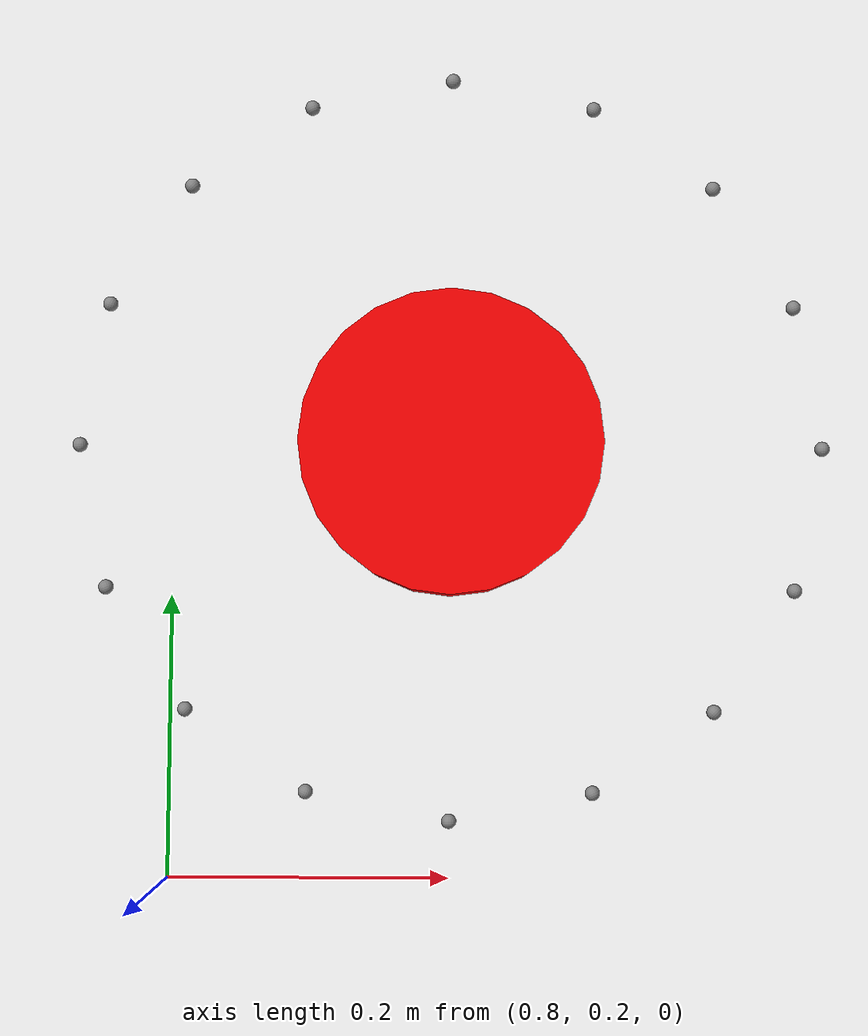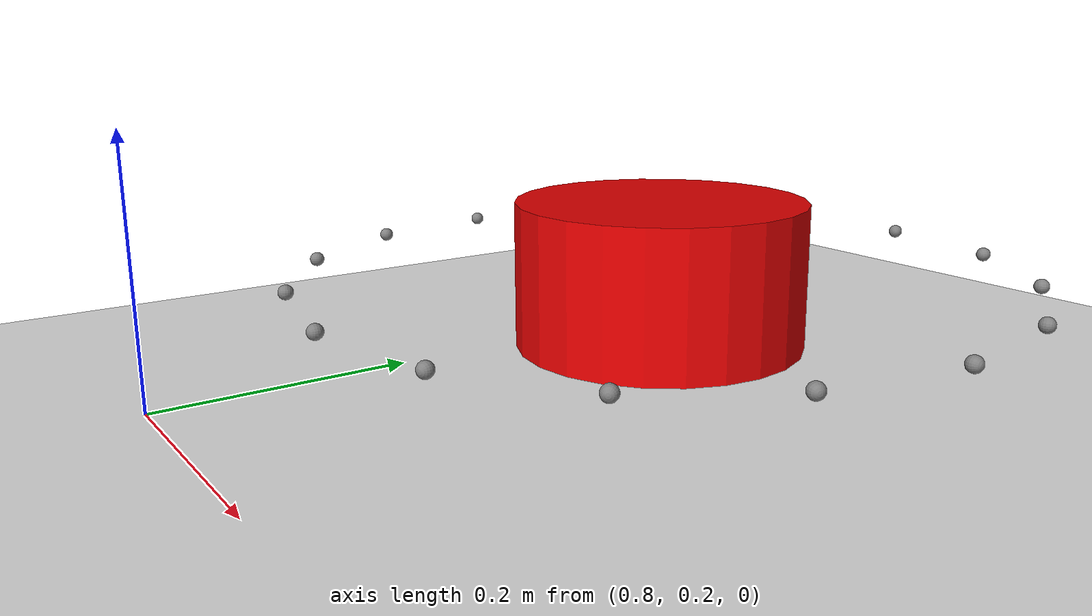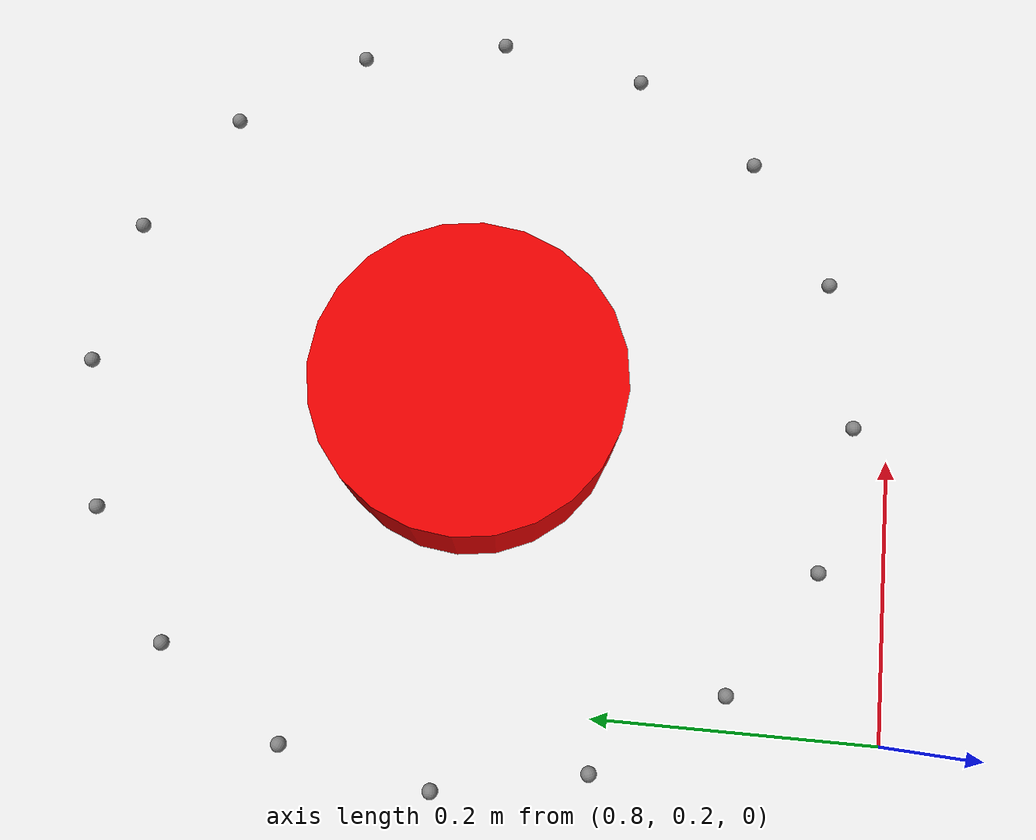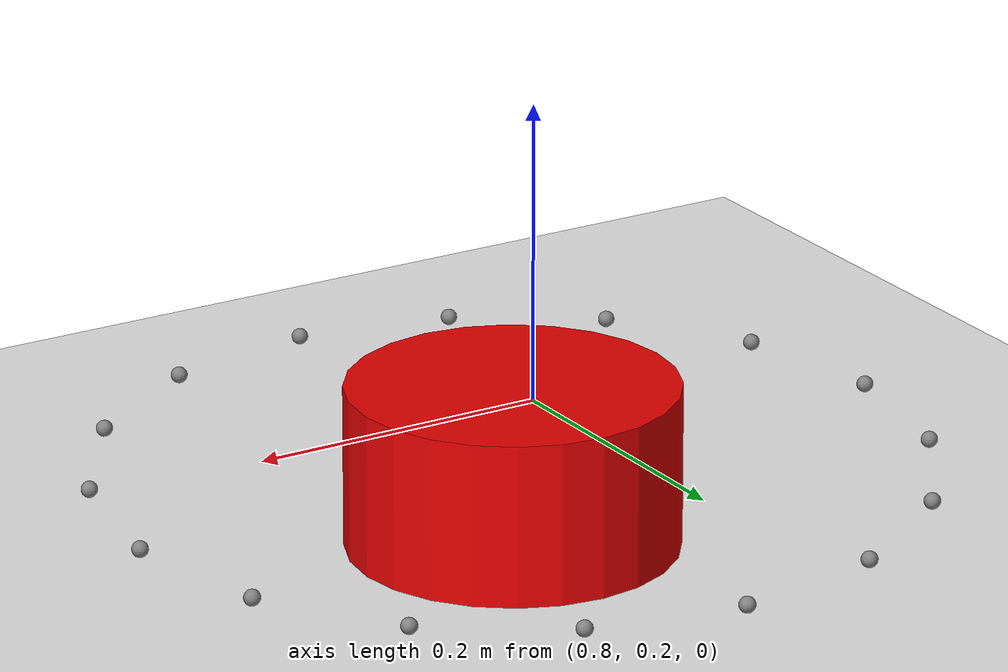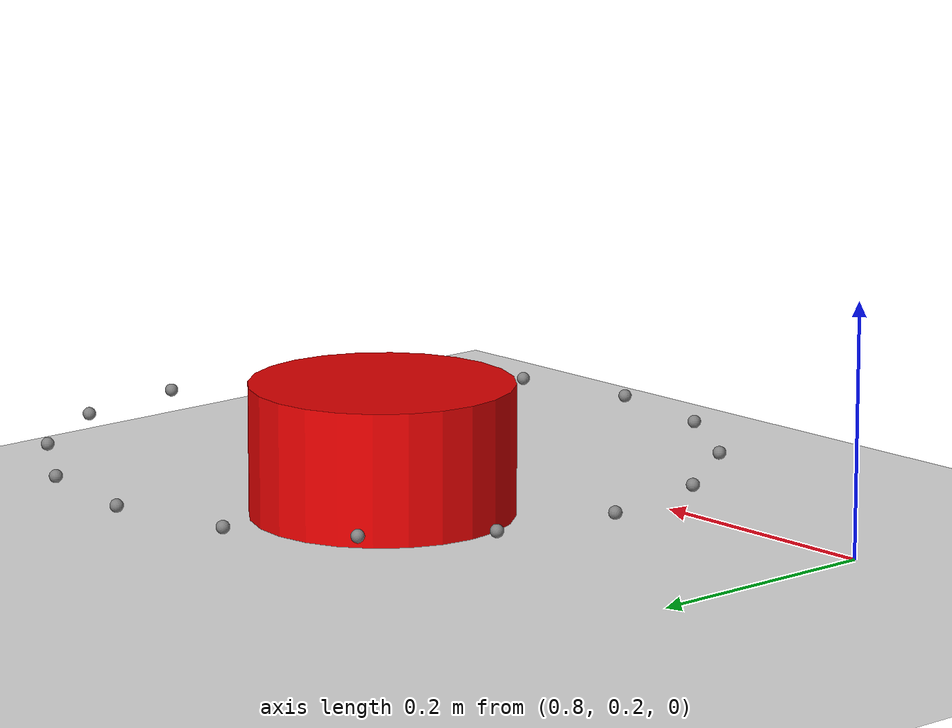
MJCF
<mujoco>
    <option gravity="0 0 -9.81">
    </option>

    <asset>
        <mesh name="environment1" file="Environment1.stl" scale="1 1 1"/>
        <mesh name="robot" file="Robot.stl" scale="1 1 1"/>
    </asset>

    <worldbody>
        <light diffuse=".5 .5 .5" pos="0 0 3" dir="0 0 -1"/>

        <geom type="plane" size="10 10 0.1" rgba=".9 .9 .9 1" friction="0 0 0"/>

        <body name="robot" pos="1 0.5 0">
             <geom type="cylinder" size="0.1 0.05" pos="0 0 0.1" rgba="0.9 0 0 1"/>

            <site name="lidar_site_0" pos="0.0 0.25 0.1" zaxis="0.0 1.0 0"/>
            <site name="lidar_site_1" pos="0.095671 0.230970 0.1" zaxis="0.383 0.924 0"/>
            <site name="lidar_site_2" pos="0.176777 0.176777 0.1" zaxis="0.707 0.707 0"/>
            <site name="lidar_site_3" pos="0.230970 0.095671 0.1" zaxis="0.924 0.383 0"/>
            <site name="lidar_site_4" pos="0.25 0.0 0.1" zaxis="1.0 0.0 0"/>
            <site name="lidar_site_5" pos="0.230970 -0.095671 0.1" zaxis="0.924 -0.383 0"/>
            <site name="lidar_site_6" pos="0.176777 -0.176777 0.1" zaxis="0.707 -0.707 0"/>
            <site name="lidar_site_7" pos="0.095671 -0.230970 0.1" zaxis="0.383 -0.924 0"/>
            <site name="lidar_site_8" pos="0.0 -0.25 0.1" zaxis="0.0 -1.0 0"/>
            <site name="lidar_site_9" pos="-0.095671 -0.230970 0.1" zaxis="-0.383 -0.924 0"/>
            <site name="lidar_site_10" pos="-0.176777 -0.176777 0.1" zaxis="-0.707 -0.707 0"/>
            <site name="lidar_site_11" pos="-0.230970 -0.095671 0.1" zaxis="-0.924 -0.383 0"/>
            <site name="lidar_site_12" pos="-0.25 0.0 0.1" zaxis="-1.0 0.0 0"/>
            <site name="lidar_site_13" pos="-0.230970 0.095671 0.1" zaxis="-0.924 0.383 0"/>
            <site name="lidar_site_14" pos="-0.176777 0.176777 0.1" zaxis="-0.707 0.707 0"/>
            <site name="lidar_site_15" pos="-0.095671 0.230970 0.1" zaxis="-0.383 0.924 0"/>

            <joint name="move_x" type="slide" axis="1 0 0" frictionloss="1"/>
            <joint name="move_y" type="slide" axis="0 1 0" frictionloss="1"/>

        </body>

    </worldbody>

    <actuator>
        <motor name="motor_x" joint="move_x" ctrlrange="-5.0 5.0" gear="10"/>
        <motor name="motor_y" joint="move_y" ctrlrange="-5.0 5.0" gear="10"/>
    </actuator>

    <sensor>
        <rangefinder name="rf_0" site="lidar_site_0" cutoff="5.0"/>
        <rangefinder name="rf_1" site="lidar_site_1" cutoff="5.0"/>
        <rangefinder name="rf_2" site="lidar_site_2" cutoff="5.0"/>
        <rangefinder name="rf_3" site="lidar_site_3" cutoff="5.0"/>
        <rangefinder name="rf_4" site="lidar_site_4" cutoff="5.0"/>
        <rangefinder name="rf_5" site="lidar_site_5" cutoff="5.0"/>
        <rangefinder name="rf_6" site="lidar_site_6" cutoff="5.0"/>
        <rangefinder name="rf_7" site="lidar_site_7" cutoff="5.0"/>
        <rangefinder name="rf_8" site="lidar_site_8" cutoff="5.0"/>
        <rangefinder name="rf_9" site="lidar_site_9" cutoff="5.0"/>
        <rangefinder name="rf_10" site="lidar_site_10" cutoff="5.0"/>
        <rangefinder name="rf_11" site="lidar_site_11" cutoff="5.0"/>
        <rangefinder name="rf_12" site="lidar_site_12" cutoff="5.0"/>
        <rangefinder name="rf_13" site="lidar_site_13" cutoff="5.0"/>
        <rangefinder name="rf_14" site="lidar_site_14" cutoff="5.0"/>
        <rangefinder name="rf_15" site="lidar_site_15" cutoff="5.0"/>
    </sensor>
</mujoco>
